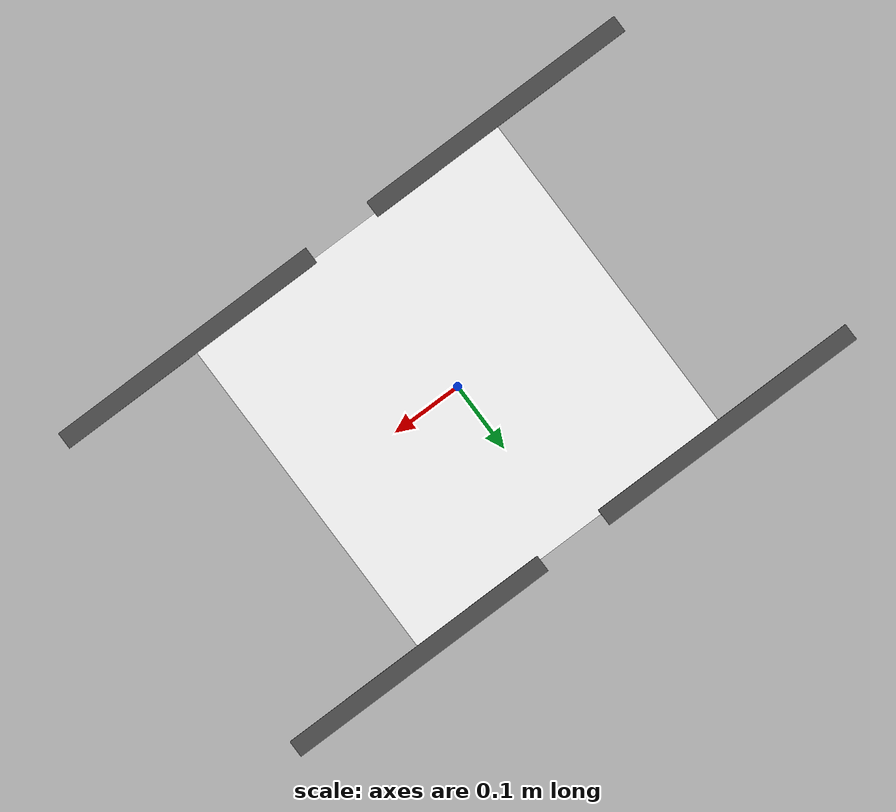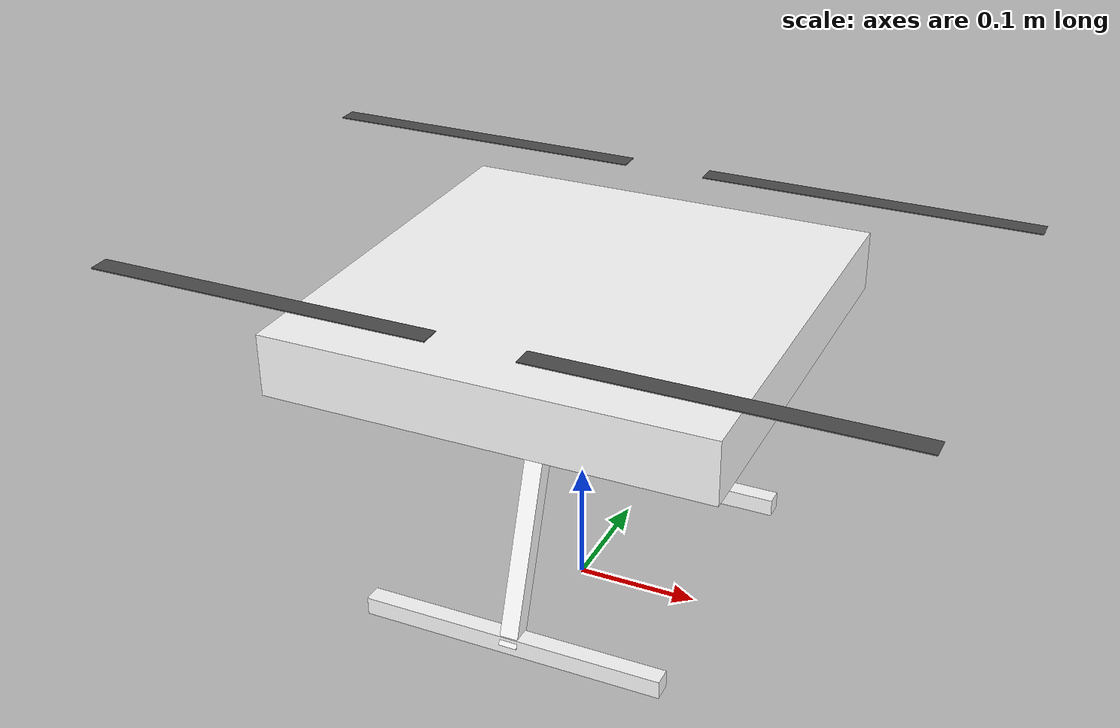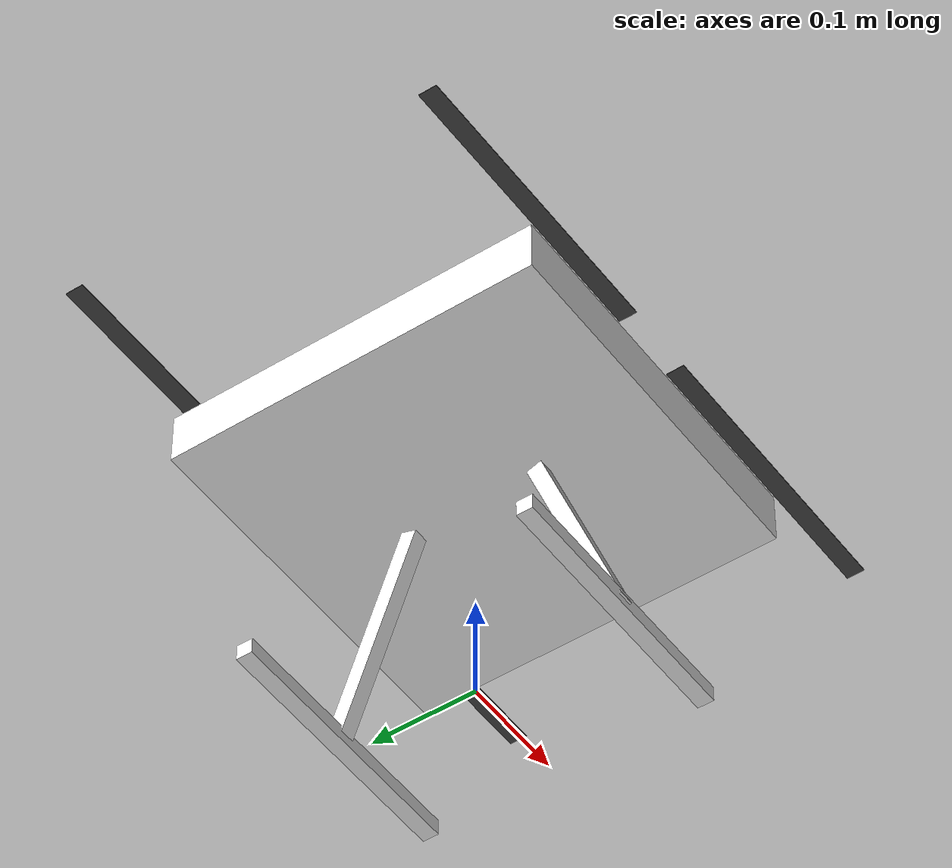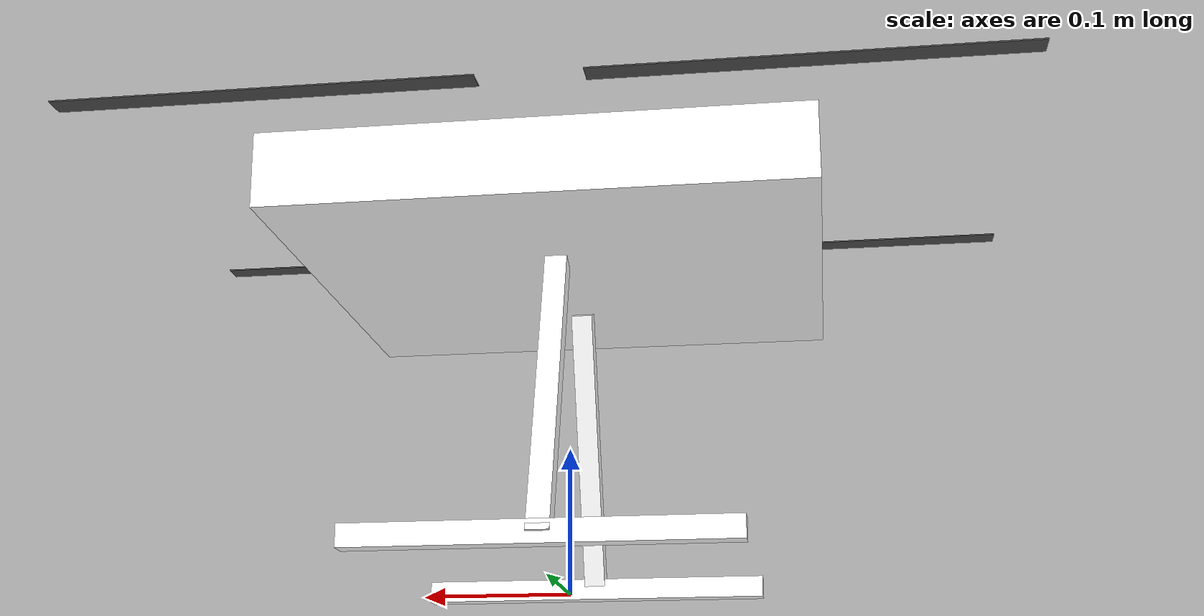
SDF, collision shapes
<?xml version="1.0" encoding="UTF-8"?>
<sdf version='1.9'>
  <model name='x500_depth'>
    <include merge='true'>
      <uri>x500</uri>
    </include>
    <include merge='true'>
      <uri>model://OakD-Lite</uri>
      <pose>.12 .03 .242 0 0 0</pose>
    </include>
    <joint name="CameraJoint" type="fixed">
      <parent>base_link</parent>
      <child>OakD-Lite/base_link</child>
    </joint>
  </model>
</sdf>

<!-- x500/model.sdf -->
<sdf version='1.9'>
  <model name='x500'>
    <include merge='true'>
      <uri>model://x500_base</uri>
    </include>

    <!-- Motor plugins -->
    <plugin filename="gz-sim-multicopter-motor-model-system" name="gz::sim::systems::MulticopterMotorModel">
      <robotNamespace>x500</robotNamespace>
      <jointName>rotor_0_joint</jointName>
      <linkName>rotor_0</linkName>
      <turningDirection>ccw</turningDirection>
      <timeConstantUp>0.0125</timeConstantUp>
      <timeConstantDown>0.025</timeConstantDown>
      <maxRotVelocity>1000.0</maxRotVelocity>
      <motorConstant>8.54858e-06</motorConstant>
      <momentConstant>0.016</momentConstant>
      <commandSubTopic>command/motor_speed</commandSubTopic>
      <actuator_number>0</actuator_number>
      <rotorDragCoefficient>8.06428e-05</rotorDragCoefficient>
      <rollingMomentCoefficient>1e-06</rollingMomentCoefficient>
      <rotorVelocitySlowdownSim>10</rotorVelocitySlowdownSim>
      <motorType>velocity</motorType>
    </plugin>

    <plugin filename="gz-sim-multicopter-motor-model-system" name="gz::sim::systems::MulticopterMotorModel">
      <robotNamespace>x500</robotNamespace>
      <jointName>rotor_1_joint</jointName>
      <linkName>rotor_1</linkName>
      <turningDirection>ccw</turningDirection>
      <timeConstantUp>0.0125</timeConstantUp>
      <timeConstantDown>0.025</timeConstantDown>
      <maxRotVelocity>1000.0</maxRotVelocity>
      <motorConstant>8.54858e-06</motorConstant>
      <momentConstant>0.016</momentConstant>
      <commandSubTopic>command/motor_speed</commandSubTopic>
      <actuator_number>1</actuator_number>
      <rotorDragCoefficient>8.06428e-05</rotorDragCoefficient>
      <rollingMomentCoefficient>1e-06</rollingMomentCoefficient>
      <rotorVelocitySlowdownSim>10</rotorVelocitySlowdownSim>
      <motorType>velocity</motorType>
    </plugin>

    <plugin filename="gz-sim-multicopter-motor-model-system" name="gz::sim::systems::MulticopterMotorModel">
      <robotNamespace>x500</robotNamespace>
      <jointName>rotor_2_joint</jointName>
      <linkName>rotor_2</linkName>
      <turningDirection>cw</turningDirection>
      <timeConstantUp>0.0125</timeConstantUp>
      <timeConstantDown>0.025</timeConstantDown>
      <maxRotVelocity>1000.0</maxRotVelocity>
      <motorConstant>8.54858e-06</motorConstant>
      <momentConstant>0.016</momentConstant>
      <commandSubTopic>command/motor_speed</commandSubTopic>
      <actuator_number>2</actuator_number>
      <rotorDragCoefficient>8.06428e-05</rotorDragCoefficient>
      <rollingMomentCoefficient>1e-06</rollingMomentCoefficient>
      <rotorVelocitySlowdownSim>10</rotorVelocitySlowdownSim>
      <motorType>velocity</motorType>
    </plugin>

    <plugin filename="gz-sim-multicopter-motor-model-system" name="gz::sim::systems::MulticopterMotorModel">
      <robotNamespace>x500</robotNamespace>
      <jointName>rotor_3_joint</jointName>
      <linkName>rotor_3</linkName>
      <turningDirection>cw</turningDirection>
      <timeConstantUp>0.0125</timeConstantUp>
      <timeConstantDown>0.025</timeConstantDown>
      <maxRotVelocity>1000.0</maxRotVelocity>
      <motorConstant>8.54858e-06</motorConstant>
      <momentConstant>0.016</momentConstant>
      <commandSubTopic>command/motor_speed</commandSubTopic>
      <actuator_number>3</actuator_number>
      <rotorDragCoefficient>8.06428e-05</rotorDragCoefficient>
      <rollingMomentCoefficient>1e-06</rollingMomentCoefficient>
      <rotorVelocitySlowdownSim>10</rotorVelocitySlowdownSim>
      <motorType>velocity</motorType>
    </plugin>

    <!-- Odometry plugin -->
    <plugin filename="gz-sim-odometry-publisher-system" name="gz::sim::systems::OdometryPublisher">
      <odom_topic>x500/odometry</odom_topic>
      <dimensions>3</dimensions>
    </plugin>

    <!-- Velocity controller plugin -->
    <plugin filename="gz-sim-multicopter-control-system" name="gz::sim::systems::MulticopterVelocityControl">
      <robotNamespace>x500</robotNamespace>
      <commandSubTopic>cmd_vel</commandSubTopic>
      <enableSubTopic>enabled_motors</enableSubTopic>
      <comLinkName>base_link</comLinkName>
      <velocityGain>2.7 2.7 2.7</velocityGain>
      <attitudeGain>2 3 0.15</attitudeGain>
      <angularRateGain>0.4 0.52 0.18</angularRateGain>
      <maximumLinearAcceleration>2 2 2</maximumLinearAcceleration>

      <rotorConfiguration>
        <rotor>
          <jointName>rotor_0_joint</jointName>
          <forceConstant>8.54858e-06</forceConstant>
          <momentConstant>0.016</momentConstant>
          <direction>1</direction>
        </rotor>
        <rotor>
          <jointName>rotor_1_joint</jointName>
          <forceConstant>8.54858e-06</forceConstant>
          <momentConstant>0.016</momentConstant>
          <direction>1</direction>
        </rotor>
        <rotor>
          <jointName>rotor_2_joint</jointName>
          <forceConstant>8.54858e-06</forceConstant>
          <momentConstant>0.016</momentConstant>
          <direction>-1</direction>
        </rotor>
        <rotor>
          <jointName>rotor_3_joint</jointName>
          <forceConstant>8.54858e-06</forceConstant>
          <momentConstant>0.016</momentConstant>
          <direction>-1</direction>
        </rotor>
      </rotorConfiguration>
    </plugin>

  </model>
</sdf>

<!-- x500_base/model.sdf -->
<sdf version='1.9'>
  <model name='x500_base'>
    <pose>0 0 .24 0 0 0</pose>
    <self_collide>false</self_collide>
    <static>false</static>
    <link name="base_link">
      <inertial>
        <mass>2.0</mass>
        <inertia>
          <ixx>0.02166666666666667</ixx>
          <ixy>0</ixy>
          <ixz>0</ixz>
          <iyy>0.02166666666666667</iyy>
          <iyz>0</iyz>
          <izz>0.04000000000000001</izz>
        </inertia>
      </inertial>
      <gravity>true</gravity>
      <velocity_decay/>
      <visual name="base_link_visual">
        <pose>0 0 .025 0 0 3.141592654</pose>
        <geometry>
          <mesh>
            <scale>1 1 1</scale>
            <uri>model://x500_base/meshes/NXP-HGD-CF.dae</uri>
          </mesh>
        </geometry>
      </visual>
      <visual name="5010_motor_base_0">
        <pose>0.174 0.174 .032 0 0 -.45</pose>
        <geometry>
          <mesh>
            <scale>1 1 1</scale>
            <uri>model://x500_base/meshes/5010Base.dae</uri>
          </mesh>
        </geometry>
      </visual>
      <visual name="5010_motor_base_1">
        <pose>-0.174 0.174 .032 0 0 -.45</pose>
        <geometry>
          <mesh>
            <scale>1 1 1</scale>
            <uri>model://x500_base/meshes/5010Base.dae</uri>
          </mesh>
        </geometry>
      </visual>
      <visual name="5010_motor_base_2">
        <pose>0.174 -0.174 .032 0 0 -.45</pose>
        <geometry>
          <mesh>
            <scale>1 1 1</scale>
            <uri>model://x500_base/meshes/5010Base.dae</uri>
          </mesh>
        </geometry>
      </visual>
      <visual name="5010_motor_base_3">
        <pose>-0.174 -0.174 .032 0 0 -.45</pose>
        <geometry>
          <mesh>
            <scale>1 1 1</scale>
            <uri>model://x500_base/meshes/5010Base.dae</uri>
          </mesh>
        </geometry>
      </visual>
      <visual name="NXP_FMUK66_FRONT">
        <pose>0.047 .001 .043 1 0 1.57</pose>
        <cast_shadows>false</cast_shadows>
        <geometry>
          <plane>
            <normal>0 0 1</normal>
            <size>.013 .007</size>
          </plane>
        </geometry>
        <material>
          <diffuse>1.0 1.0 1.0</diffuse>
          <specular>1.0 1.0 1.0</specular>
          <pbr>
            <metal>
              <albedo_map>model://x500_base/materials/textures/nxp.png</albedo_map>
            </metal>
          </pbr>
        </material>
      </visual>
      <visual name="NXP_FMUK66_TOP">
        <pose>-0.023 0 .0515 0 0 -1.57</pose>
        <cast_shadows>false</cast_shadows>
        <geometry>
          <plane>
            <normal>0 0 1</normal>
            <size>.013 .007</size>
          </plane>
        </geometry>
        <material>
          <diffuse>1.0 1.0 1.0</diffuse>
          <specular>1.0 1.0 1.0</specular>
          <pbr>
            <metal>
              <albedo_map>model://x500_base/materials/textures/nxp.png</albedo_map>
            </metal>
          </pbr>
        </material>
      </visual>
      <visual name="RDDRONE_FMUK66_TOP">
        <pose>-.03 0 .0515 0 0 -1.57</pose>
        <cast_shadows>false</cast_shadows>
        <geometry>
          <plane>
            <normal>0 0 1</normal>
            <size>.032 .0034</size>
          </plane>
        </geometry>
        <material>
          <diffuse>1.0 1.0 1.0</diffuse>
          <specular>1.0 1.0 1.0</specular>
          <pbr>
            <metal>
              <albedo_map>model://x500_base/materials/textures/rd.png</albedo_map>
            </metal>
          </pbr>
        </material>
      </visual>
      <collision name="base_link_collision_0">
        <pose>0 0 .007 0 0 0</pose>
        <geometry>
          <box>
            <size>0.35355339059327373 0.35355339059327373 0.05</size>
          </box>
        </geometry>
        <surface>
          <contact>
            <ode>
              <min_depth>0.001</min_depth>
              <max_vel>0</max_vel>
            </ode>
          </contact>
          <friction>
            <ode/>
          </friction>
        </surface>
      </collision>
      <collision name="base_link_collision_1">
        <pose>0 -0.098 -.123 -0.35 0 0</pose>
        <geometry>
          <box>
            <size>0.015 0.015 0.21</size>
          </box>
        </geometry>
        <surface>
          <contact>
            <ode>
              <min_depth>0.001</min_depth>
              <max_vel>0</max_vel>
            </ode>
          </contact>
          <friction>
            <ode/>
          </friction>
        </surface>
      </collision>
      <collision name="base_link_collision_2">
        <pose>0 0.098 -.123 0.35 0 0</pose>
        <geometry>
          <box>
            <size>0.015 0.015 0.21</size>
          </box>
        </geometry>
        <surface>
          <contact>
            <ode>
              <min_depth>0.001</min_depth>
              <max_vel>0</max_vel>
            </ode>
          </contact>
          <friction>
            <ode/>
          </friction>
        </surface>
      </collision>
      <collision name="base_link_collision_3">
        <pose>0 -0.132 -.2195 0 0 0</pose>
        <geometry>
          <box>
            <size>0.25 0.015 0.015</size>
          </box>
        </geometry>
        <surface>
          <contact>
            <ode>
              <min_depth>0.001</min_depth>
              <max_vel>0</max_vel>
            </ode>
          </contact>
          <friction>
            <ode/>
          </friction>
        </surface>
      </collision>
      <collision name="base_link_collision_4">
        <pose>0 0.132 -.2195 0 0 0</pose>
        <geometry>
          <box>
            <size>0.25 0.015 0.015</size>
          </box>
        </geometry>
        <surface>
          <contact>
            <ode>
              <min_depth>0.001</min_depth>
              <max_vel>0</max_vel>
            </ode>
          </contact>
          <friction>
            <ode/>
          </friction>
        </surface>
      </collision>
      <!-- Sensors -->
      <sensor name="air_pressure_sensor" type="air_pressure">
        <always_on>1</always_on>
        <update_rate>50</update_rate>
        <topic>x500/air_pressure</topic>
        <air_pressure>
          <pressure>
            <noise type="gaussian">
              <mean>0</mean>
              <stddev>0.01</stddev>
            </noise>
          </pressure>
        </air_pressure>
      </sensor>
      <sensor name="imu_sensor" type="imu">
        <topic>x500/imu</topic>
        <always_on>1</always_on>
        <update_rate>250</update_rate>
        <imu>
          <angular_velocity>
            <x>
              <noise type="gaussian">
                <mean>0</mean>
                <stddev>0.00018665</stddev>
                <dynamic_bias_stddev>3.8785e-05</dynamic_bias_stddev>
                <dynamic_bias_correlation_time>1000</dynamic_bias_correlation_time>
              </noise>
            </x>
            <y>
              <noise type="gaussian">
                <mean>0</mean>
                <stddev>0.00018665</stddev>
                <dynamic_bias_stddev>3.8785e-05</dynamic_bias_stddev>
                <dynamic_bias_correlation_time>1000</dynamic_bias_correlation_time>
              </noise>
            </y>
            <z>
              <noise type="gaussian">
                <mean>0</mean>
                <stddev>0.00018665</stddev>
                <dynamic_bias_stddev>3.8785e-05</dynamic_bias_stddev>
                <dynamic_bias_correlation_time>1000</dynamic_bias_correlation_time>
              </noise>
            </z>
          </angular_velocity>
          <linear_acceleration>
            <x>
              <noise type="gaussian">
                <mean>0</mean>
                <stddev>0.00186</stddev>
                <dynamic_bias_stddev>0.006</dynamic_bias_stddev>
                <dynamic_bias_correlation_time>300</dynamic_bias_correlation_time>
              </noise>
            </x>
            <y>
              <noise type="gaussian">
                <mean>0</mean>
                <stddev>0.00186</stddev>
                <dynamic_bias_stddev>0.006</dynamic_bias_stddev>
                <dynamic_bias_correlation_time>300</dynamic_bias_correlation_time>
              </noise>
            </y>
            <z>
              <noise type="gaussian">
                <mean>0</mean>
                <stddev>0.00186</stddev>
                <dynamic_bias_stddev>0.006</dynamic_bias_stddev>
                <dynamic_bias_correlation_time>300</dynamic_bias_correlation_time>
              </noise>
            </z>
          </linear_acceleration>
        </imu>
      </sensor>
      <sensor name="navsat_sensor" type="navsat">
        <always_on>1</always_on>
        <update_rate>30</update_rate>
        <topic>x500/navsat</topic>
      </sensor>
    </link>

    <link name="rotor_0">
      <gravity>true</gravity>
      <self_collide>false</self_collide>
      <velocity_decay/>
      <pose>0.174 -0.174 0.06 0 0 0</pose>
      <inertial>
          <mass>0.016076923076923075</mass>
          <inertia>
            <ixx>3.8464910483993325e-07</ixx>
            <iyy>2.6115851691700804e-05</iyy>
            <izz>2.649858234714004e-05</izz>
          </inertia>
        </inertial>
      <visual name="rotor_0_visual">
        <pose>-0.022 -0.14638461538461536 -0.016 0 0 0</pose>
        <geometry>
          <mesh>
            <scale>0.8461538461538461 0.8461538461538461 0.8461538461538461</scale>
            <uri>model://x500_base/meshes/1345_prop_ccw.stl</uri>
          </mesh>
        </geometry>
          <material>
            <ambient>0.3 0.3 0.3 1</ambient>
            <diffuse>0.3 0.3 0.3 1</diffuse>
            <specular>0.1 0.1 0.1 1</specular>
            <emissive>0 0 0 1</emissive>
          </material>
      </visual>
      <visual name="rotor_0_visual_motor_bell">
        <pose>0 0 -.032 0 0 0</pose>
        <geometry>
          <mesh>
            <scale>1 1 1</scale>
            <uri>model://x500_base/meshes/5010Bell.dae</uri>
          </mesh>
        </geometry>
      </visual>
      <collision name="rotor_0_collision">
        <pose>0 0 0 0 0 0 </pose>
        <geometry>
          <box>
            <size>0.2792307692307692 0.016923076923076923 0.0008461538461538462</size>
          </box>
        </geometry>
        <surface>
          <contact>
            <ode>
              <min_depth>0.001</min_depth>
              <max_vel>0</max_vel>
            </ode>
          </contact>
          <friction>
            <ode/>
          </friction>
        </surface>
      </collision>
    </link>
    <joint name="rotor_0_joint" type="revolute">
      <parent>base_link</parent>
      <child>rotor_0</child>
      <axis>
        <xyz>0 0 1</xyz>
        <limit>
          <lower>-1e+16</lower>
          <upper>1e+16</upper>
        </limit>
        <dynamics>
          <spring_reference>0</spring_reference>
          <spring_stiffness>0</spring_stiffness>
        </dynamics>
      </axis>
    </joint>
    <link name="rotor_1">
      <gravity>true</gravity>
      <self_collide>false</self_collide>
      <velocity_decay/>
      <pose>-0.174 0.174 0.06 0 0 0</pose>
      <inertial>
          <mass>0.016076923076923075</mass>
          <inertia>
            <ixx>3.8464910483993325e-07</ixx>
            <iyy>2.6115851691700804e-05</iyy>
            <izz>2.649858234714004e-05</izz>
          </inertia>
        </inertial>
      <visual name="rotor_1_visual">
        <pose>-0.022 -0.14638461538461536 -0.016 0 0 0</pose>
        <geometry>
          <mesh>
            <scale>0.8461538461538461 0.8461538461538461 0.8461538461538461</scale>
            <uri>model://x500_base/meshes/1345_prop_ccw.stl</uri>
          </mesh>
        </geometry>
          <material>
            <ambient>0.3 0.3 0.3 1</ambient>
            <diffuse>0.3 0.3 0.3 1</diffuse>
            <specular>0.1 0.1 0.1 1</specular>
            <emissive>0 0 0 1</emissive>
          </material>
      </visual>
      <visual name="rotor_1_visual_motor_top">
        <pose>0 0 -.032 0 0 0</pose>
        <geometry>
          <mesh>
            <scale>1 1 1</scale>
            <uri>model://x500_base/meshes/5010Bell.dae</uri>
          </mesh>
        </geometry>
      </visual>
      <collision name="rotor_1_collision">
        <pose>0 0 0 0 0 0 </pose>
        <geometry>
          <box>
            <size>0.2792307692307692 0.016923076923076923 0.0008461538461538462</size>
          </box>
        </geometry>
        <surface>
          <contact>
            <ode>
              <min_depth>0.001</min_depth>
              <max_vel>0</max_vel>
            </ode>
          </contact>
          <friction>
            <ode/>
          </friction>
        </surface>
      </collision>
    </link>
    <joint name="rotor_1_joint" type="revolute">
      <parent>base_link</parent>
      <child>rotor_1</child>
      <axis>
        <xyz>0 0 1</xyz>
        <limit>
          <lower>-1e+16</lower>
          <upper>1e+16</upper>
        </limit>
        <dynamics>
          <spring_reference>0</spring_reference>
          <spring_stiffness>0</spring_stiffness>
        </dynamics>
      </axis>
    </joint>
    <link name="rotor_2">
      <gravity>true</gravity>
      <self_collide>false</self_collide>
      <velocity_decay/>
      <pose>0.174 0.174 0.06 0 0 0</pose>
      <inertial>
          <mass>0.016076923076923075</mass>
          <inertia>
            <ixx>3.8464910483993325e-07</ixx>
            <iyy>2.6115851691700804e-05</iyy>
            <izz>2.649858234714004e-05</izz>
          </inertia>
        </inertial>
      <visual name="rotor_2_visual">
        <pose>-0.022 -0.14638461538461536 -0.016 0 0 0</pose>
        <geometry>
          <mesh>
            <scale>0.8461538461538461 0.8461538461538461 0.8461538461538461</scale>
            <uri>model://x500_base/meshes/1345_prop_cw.stl</uri>
          </mesh>
        </geometry>
          <material>
            <ambient>0.3 0.3 0.3 1</ambient>
            <diffuse>0.3 0.3 0.3 1</diffuse>
            <specular>0.1 0.1 0.1 1</specular>
            <emissive>0 0 0 1</emissive>
          </material>
      </visual>
      <visual name="rotor_2_visual_motor_top">
        <pose>0 0 -.032 0 0 0</pose>
        <geometry>
          <mesh>
            <scale>1 1 1</scale>
            <uri>model://x500_base/meshes/5010Bell.dae</uri>
          </mesh>
        </geometry>
      </visual>
      <collision name="rotor_2_collision">
        <pose>0 0 0 0 0 0 </pose>
        <geometry>
          <box>
            <size>0.2792307692307692 0.016923076923076923 0.0008461538461538462</size>
          </box>
        </geometry>
        <surface>
          <contact>
            <ode>
              <min_depth>0.001</min_depth>
              <max_vel>0</max_vel>
            </ode>
          </contact>
          <friction>
            <ode/>
          </friction>
        </surface>
      </collision>
    </link>
    <joint name="rotor_2_joint" type="revolute">
      <parent>base_link</parent>
      <child>rotor_2</child>
      <axis>
        <xyz>0 0 1</xyz>
        <limit>
          <lower>-1e+16</lower>
          <upper>1e+16</upper>
        </limit>
        <dynamics>
          <spring_reference>0</spring_reference>
          <spring_stiffness>0</spring_stiffness>
        </dynamics>
      </axis>
    </joint>
    <link name="rotor_3">
      <gravity>true</gravity>
      <self_collide>false</self_collide>
      <velocity_decay/>
      <pose>-0.174 -0.174 0.06 0 0 0</pose>
      <inertial>
          <mass>0.016076923076923075</mass>
          <inertia>
            <ixx>3.8464910483993325e-07</ixx>
            <iyy>2.6115851691700804e-05</iyy>
            <izz>2.649858234714004e-05</izz>
          </inertia>
        </inertial>
      <visual name="rotor_3_visual">
        <pose>-0.022 -0.14638461538461536 -0.016 0 0 0</pose>
        <geometry>
          <mesh>
            <scale>0.8461538461538461 0.8461538461538461 0.8461538461538461</scale>
            <uri>model://x500_base/meshes/1345_prop_cw.stl</uri>
          </mesh>
        </geometry>
          <material>
            <ambient>0.3 0.3 0.3 1</ambient>
            <diffuse>0.3 0.3 0.3 1</diffuse>
            <specular>0.1 0.1 0.1 1</specular>
            <emissive>0 0 0 1</emissive>
          </material>
      </visual>
      <visual name="rotor_3_visual_motor_top">
        <pose>0 0 -.032 0 0 0</pose>
        <geometry>
          <mesh>
            <scale>1 1 1</scale>
            <uri>model://x500_base/meshes/5010Bell.dae</uri>
          </mesh>
        </geometry>
      </visual>
      <collision name="rotor_3_collision">
        <pose>0 0 0 0 0 0 </pose>
        <geometry>
          <box>
            <size>0.2792307692307692 0.016923076923076923 0.0008461538461538462</size>
          </box>
        </geometry>
        <surface>
          <contact>
            <ode>
              <min_depth>0.001</min_depth>
              <max_vel>0</max_vel>
            </ode>
          </contact>
          <friction>
            <ode/>
          </friction>
        </surface>
      </collision>
    </link>
    <joint name="rotor_3_joint" type="revolute">
      <parent>base_link</parent>
      <child>rotor_3</child>
      <axis>
        <xyz>0 0 1</xyz>
        <limit>
          <lower>-1e+16</lower>
          <upper>1e+16</upper>
        </limit>
        <dynamics>
          <spring_reference>0</spring_reference>
          <spring_stiffness>0</spring_stiffness>
        </dynamics>
      </axis>
    </joint>
  </model>
</sdf>

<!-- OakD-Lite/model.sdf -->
<sdf version='1.9'>
  <model name='OakD-Lite'>
    <pose>0 0 0 0 0 0</pose>
    <self_collide>false</self_collide>
    <static>false</static>
    <link name="OakD-Lite/base_link">
      <gravity>false</gravity>
      <inertial>
        <mass>1e-9</mass>
        <inertia>
          <ixx>1e-9</ixx>
          <ixy>0</ixy>
          <ixz>0</ixz>
          <iyy>1e-9</iyy>
          <iyz>0</iyz>
          <izz>1e-9</izz>
        </inertia>
      </inertial>
      <visual name="OakD-Lite/visual">
        <pose>0 0 0 0 0 0</pose>
        <geometry>
          <mesh>
            <scale>1 1 1</scale>
            <uri>model://OakD-Lite/meshes/OakDLite.dae</uri>
          </mesh>
        </geometry>
      </visual>
      <collision name="OakD-Lite/collision">
        <pose>0.00358 -0.03 .014 0 0 0</pose>
        <geometry>
          <box>
            <size>0.0175 0.091 0.028</size>
          </box>
        </geometry>
      </collision>
      <sensor name="IMX214" type="camera">
        <pose>0.01233 -0.03 .01878 0 0 0</pose>
        <camera>
          <horizontal_fov>1.274</horizontal_fov>
          <image>
            <width>320</width>
            <height>240</height>
          </image>
          <clip>
            <near>0.1</near>
            <far>100</far>
          </clip>
        </camera>
        <always_on>1</always_on>
        <update_rate>30</update_rate>
        <visualize>true</visualize>
        <topic>camera</topic>
      </sensor>
      <sensor name="StereoOV7251" type="depth_camera">
        <pose>0.01233 -0.03 .01878 0 0 0</pose>
        <camera>
          <horizontal_fov>1.274</horizontal_fov>
          <image>
            <width>320</width>
            <height>240</height>
            <format>R_FLOAT32</format>
          </image>
          <clip>
            <near>0.2</near>
            <far>19.1</far>
          </clip>
        </camera>
        <always_on>1</always_on>
        <update_rate>30</update_rate>
        <visualize>true</visualize>
        <topic>x500/depth_camera</topic>
      </sensor>
    </link>
  </model>
</sdf>
